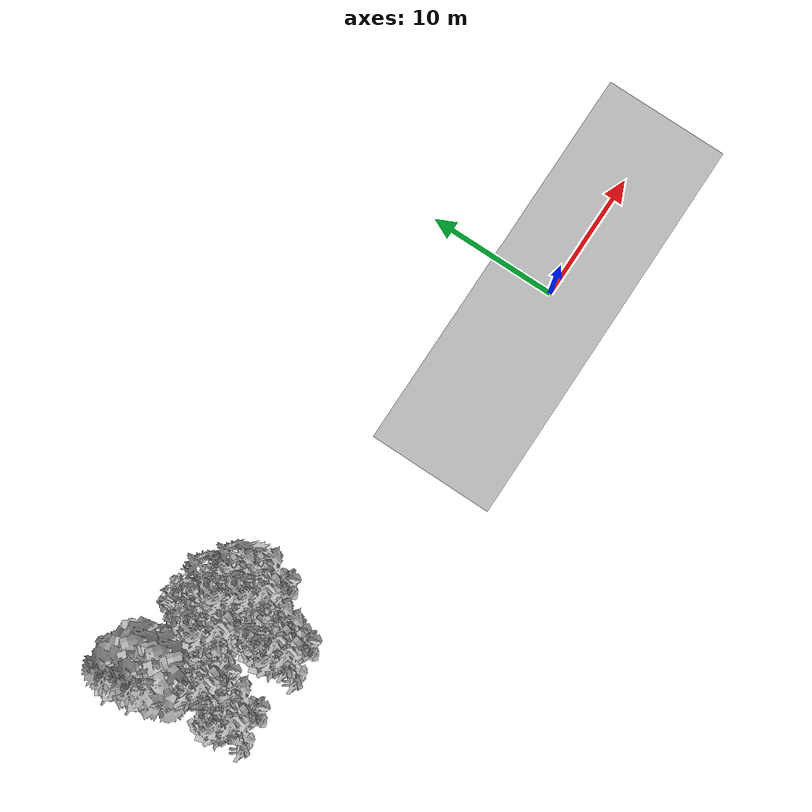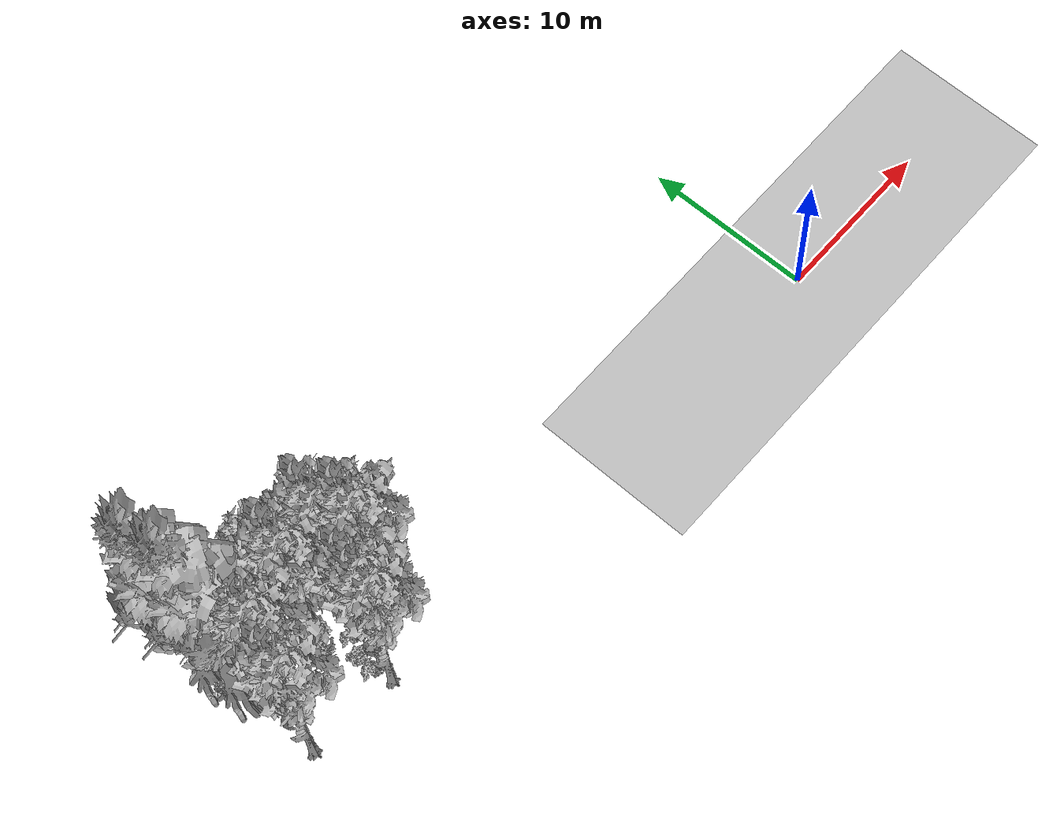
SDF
<sdf version="1.7">
 <world name="default">
  <model name="ground_plane">
   <static>1</static>
   <link name="link">
    <collision name="collision">
     <geometry><plane><normal>0 0 1</normal><size>100 100</size></plane></geometry>
     <surface><contact><ode><min_depth>0.01</min_depth><max_vel>0</max_vel></ode></contact></surface>
    </collision>
    <visual name="grass">
     <cast_shadows>0</cast_shadows>
     <geometry>
      <mesh>
       <scale>0.5814285714285714 0.18142857142857144 0.1</scale>
       <uri>file://grass_plane/meshes/grass_plane.dae</uri>
      </mesh>
     </geometry>
    </visual>
   </link>
  </model>
  <model name="Tree 63">
   <static>1</static>
   <pose>-31.21561768988544 2.196881461861672 0 1.57079 -0 0</pose>
   <link name="link">
    <collision name="collision">
     <geometry><mesh><scale>3.5 5 3.5</scale><uri>model://tree_9/meshes/tree_9.obj</uri></mesh></geometry>
    </collision>
    <visual name="visual">
     <geometry><mesh><scale>3.5 5 3.5</scale><uri>model://tree_9/meshes/tree_9.obj</uri></mesh></geometry>
    </visual>
   </link>
  </model>
  <model name="Tree 78">
   <static>1</static>
   <pose>-28.92555686504793 4.577419622613448 0 1.57079 -0 0</pose>
   <link name="link">
    <collision name="collision">
     <geometry><mesh><scale>3.5 5 3.5</scale><uri>model://tree_9/meshes/tree_9.obj</uri></mesh></geometry>
    </collision>
    <visual name="visual">
     <geometry><mesh><scale>3.5 5 3.5</scale><uri>model://tree_9/meshes/tree_9.obj</uri></mesh></geometry>
    </visual>
   </link>
  </model>
  <model name="Tree 94">
   <static>1</static>
   <pose>-31.697492277629234 7.117994586866555 0 1.57079 -0 0</pose>
   <link name="link">
    <collision name="collision">
     <geometry><mesh><scale>3.5 5 3.5</scale><uri>model://tree_2/meshes/tree_2.obj</uri></mesh></geometry>
    </collision>
    <visual name="visual">
     <geometry><mesh><scale>3.5 5 3.5</scale><uri>model://tree_2/meshes/tree_2.obj</uri></mesh></geometry>
    </visual>
   </link>
  </model>
  <model name="Tree 200">
   <static>1</static>
   <pose>-37.3168817742573 8.342713063327917 0 1.57079 -0 0</pose>
   <link name="link">
    <collision name="collision">
     <geometry><mesh><scale>3.5 5 3.5</scale><uri>model://tree_4/meshes/tree_4.obj</uri></mesh></geometry>
    </collision>
    <visual name="visual">
     <geometry><mesh><scale>3.5 5 3.5</scale><uri>model://tree_4/meshes/tree_4.obj</uri></mesh></geometry>
    </visual>
   </link>
  </model>
  <model name="Tree 217">
   <static>1</static>
   <pose>-36.78636152033653 1.6754606023250744 0 1.57079 -0 0</pose>
   <link name="link">
    <collision name="collision">
     <geometry><mesh><scale>3.5 5 3.5</scale><uri>model://tree_9/meshes/tree_9.obj</uri></mesh></geometry>
    </collision>
    <visual name="visual">
     <geometry><mesh><scale>3.5 5 3.5</scale><uri>model://tree_9/meshes/tree_9.obj</uri></mesh></geometry>
    </visual>
   </link>
  </model>
  <model name="Tree 220">
   <static>1</static>
   <pose>-36.97636480502211 6.691203330933504 0 1.57079 -0 0</pose>
   <link name="link">
    <collision name="collision">
     <geometry><mesh><scale>3.5 5 3.5</scale><uri>model://tree_4/meshes/tree_4.obj</uri></mesh></geometry>
    </collision>
    <visual name="visual">
     <geometry><mesh><scale>3.5 5 3.5</scale><uri>model://tree_4/meshes/tree_4.obj</uri></mesh></geometry>
    </visual>
   </link>
  </model>
  <model name="Tree 242">
   <static>1</static>
   <pose>-29.951175129478877 5.967995653652164 0 1.57079 -0 0</pose>
   <link name="link">
    <collision name="collision">
     <geometry><mesh><scale>3.5 5 3.5</scale><uri>model://tree_9/meshes/tree_9.obj</uri></mesh></geometry>
    </collision>
    <visual name="visual">
     <geometry><mesh><scale>3.5 5 3.5</scale><uri>model://tree_9/meshes/tree_9.obj</uri></mesh></geometry>
    </visual>
   </link>
  </model>
  <model name="Tree 244">
   <static>1</static>
   <pose>-30.010970010973917 5.877095161594713 0 1.57079 -0 0</pose>
   <link name="link">
    <collision name="collision">
     <geometry><mesh><scale>3.5 5 3.5</scale><uri>model://tree_2/meshes/tree_2.obj</uri></mesh></geometry>
    </collision>
    <visual name="visual">
     <geometry><mesh><scale>3.5 5 3.5</scale><uri>model://tree_2/meshes/tree_2.obj</uri></mesh></geometry>
    </visual>
   </link>
  </model>
  <model name="Tree 303">
   <static>1</static>
   <pose>-35.87293589277638 4.53346519526924 0 1.57079 -0 0</pose>
   <link name="link">
    <collision name="collision">
     <geometry><mesh><scale>3.5 5 3.5</scale><uri>model://tree_9/meshes/tree_9.obj</uri></mesh></geometry>
    </collision>
    <visual name="visual">
     <geometry><mesh><scale>3.5 5 3.5</scale><uri>model://tree_9/meshes/tree_9.obj</uri></mesh></geometry>
    </visual>
   </link>
  </model>
  <model name="Tree 315">
   <static>1</static>
   <pose>-32.563385631751046 5.72200652924996 0 1.57079 -0 0</pose>
   <link name="link">
    <collision name="collision">
     <geometry><mesh><scale>3.5 5 3.5</scale><uri>model://tree_9/meshes/tree_9.obj</uri></mesh></geometry>
    </collision>
    <visual name="visual">
     <geometry><mesh><scale>3.5 5 3.5</scale><uri>model://tree_9/meshes/tree_9.obj</uri></mesh></geometry>
    </visual>
   </link>
  </model>
  <model name="Tree 320">
   <static>1</static>
   <pose>-31.44350111024857 1.2534773357259326 0 1.57079 -0 0</pose>
   <link name="link">
    <collision name="collision">
     <geometry><mesh><scale>3.5 5 3.5</scale><uri>model://tree_9/meshes/tree_9.obj</uri></mesh></geometry>
    </collision>
    <visual name="visual">
     <geometry><mesh><scale>3.5 5 3.5</scale><uri>model://tree_9/meshes/tree_9.obj</uri></mesh></geometry>
    </visual>
   </link>
  </model>
  <model name="Bush 35">
   <static>1</static>
   <pose>-32.37316757940988 5.565259713602575 0 1.57079 -0 0</pose>
   <link name="link">
    <collision name="collision">
     <geometry><mesh><scale>2 2 2</scale><uri>model://bush_1/meshes/bush_1.obj</uri></mesh></geometry>
     <surface><contact><collide_without_contact>false</collide_without_contact></contact></surface>
    </collision>
    <visual name="visual">
     <geometry><mesh><scale>2 2 2</scale><uri>model://bush_1/meshes/bush_1.obj</uri></mesh></geometry>
    </visual>
   </link>
  </model>
  <model name="Bush 130">
   <static>1</static>
   <pose>-31.63179395514508 3.2732201450500433 0 1.57079 -0 0</pose>
   <link name="link">
    <collision name="collision">
     <geometry><mesh><scale>2 2 2</scale><uri>model://bush_3/meshes/bush_3.obj</uri></mesh></geometry>
     <surface><contact><collide_without_contact>false</collide_without_contact></contact></surface>
    </collision>
    <visual name="visual">
     <geometry><mesh><scale>2 2 2</scale><uri>model://bush_3/meshes/bush_3.obj</uri></mesh></geometry>
    </visual>
   </link>
  </model>
  <model name="Bush 206">
   <static>1</static>
   <pose>-35.0071109521883 4.3697994524018995 0 1.57079 -0 0</pose>
   <link name="link">
    <collision name="collision">
     <geometry><mesh><scale>2 2 2</scale><uri>model://bush_0/meshes/bush_0.obj</uri></mesh></geometry>
     <surface><contact><collide_without_contact>false</collide_without_contact></contact></surface>
    </collision>
    <visual name="visual">
     <geometry><mesh><scale>2 2 2</scale><uri>model://bush_0/meshes/bush_0.obj</uri></mesh></geometry>
    </visual>
   </link>
  </model>
  <model name="Bush 207">
   <static>1</static>
   <pose>-32.64963420022117 4.603587213596008 0 1.57079 -0 0</pose>
   <link name="link">
    <collision name="collision">
     <geometry><mesh><scale>2 2 2</scale><uri>model://bush_4/meshes/bush_4.obj</uri></mesh></geometry>
     <surface><contact><collide_without_contact>false</collide_without_contact></contact></surface>
    </collision>
    <visual name="visual">
     <geometry><mesh><scale>2 2 2</scale><uri>model://bush_4/meshes/bush_4.obj</uri></mesh></geometry>
    </visual>
   </link>
  </model>
  <model name="Bush 222">
   <static>1</static>
   <pose>-37.312894489707695 7.2241543597930225 0 1.57079 -0 0</pose>
   <link name="link">
    <collision name="collision">
     <geometry><mesh><scale>2 2 2</scale><uri>model://bush_5/meshes/bush_5.obj</uri></mesh></geometry>
     <surface><contact><collide_without_contact>false</collide_without_contact></contact></surface>
    </collision>
    <visual name="visual">
     <geometry><mesh><scale>2 2 2</scale><uri>model://bush_5/meshes/bush_5.obj</uri></mesh></geometry>
    </visual>
   </link>
  </model>
  <model name="Bush 234">
   <static>1</static>
   <pose>-29.791986182399487 5.2658072166791285 0 1.57079 -0 0</pose>
   <link name="link">
    <collision name="collision">
     <geometry><mesh><scale>2 2 2</scale><uri>model://bush_4/meshes/bush_4.obj</uri></mesh></geometry>
     <surface><contact><collide_without_contact>false</collide_without_contact></contact></surface>
    </collision>
    <visual name="visual">
     <geometry><mesh><scale>2 2 2</scale><uri>model://bush_4/meshes/bush_4.obj</uri></mesh></geometry>
    </visual>
   </link>
  </model>
  <model name="Bush 245">
   <static>1</static>
   <pose>-31.231741331025646 4.412689349904586 0 1.57079 -0 0</pose>
   <link name="link">
    <collision name="collision">
     <geometry><mesh><scale>2 2 2</scale><uri>model://bush_2/meshes/bush_2.obj</uri></mesh></geometry>
     <surface><contact><collide_without_contact>false</collide_without_contact></contact></surface>
    </collision>
    <visual name="visual">
     <geometry><mesh><scale>2 2 2</scale><uri>model://bush_2/meshes/bush_2.obj</uri></mesh></geometry>
    </visual>
   </link>
  </model>
  <model name="Bush 282">
   <static>1</static>
   <pose>-29.44556093262815 6.908944464965664 0 1.57079 -0 0</pose>
   <link name="link">
    <collision name="collision">
     <geometry><mesh><scale>2 2 2</scale><uri>model://bush_1/meshes/bush_1.obj</uri></mesh></geometry>
     <surface><contact><collide_without_contact>false</collide_without_contact></contact></surface>
    </collision>
    <visual name="visual">
     <geometry><mesh><scale>2 2 2</scale><uri>model://bush_1/meshes/bush_1.obj</uri></mesh></geometry>
    </visual>
   </link>
  </model>
  <model name="Bush 290">
   <static>1</static>
   <pose>-31.832633406155832 2.340225608832558 0 1.57079 -0 0</pose>
   <link name="link">
    <collision name="collision">
     <geometry><mesh><scale>2 2 2</scale><uri>model://bush_2/meshes/bush_2.obj</uri></mesh></geometry>
     <surface><contact><collide_without_contact>false</collide_without_contact></contact></surface>
    </collision>
    <visual name="visual">
     <geometry><mesh><scale>2 2 2</scale><uri>model://bush_2/meshes/bush_2.obj</uri></mesh></geometry>
    </visual>
   </link>
  </model>
  <model name="Bush 292">
   <static>1</static>
   <pose>-35.76386585404576 8.378108346823357 0 1.57079 -0 0</pose>
   <link name="link">
    <collision name="collision">
     <geometry><mesh><scale>2 2 2</scale><uri>model://bush_3/meshes/bush_3.obj</uri></mesh></geometry>
     <surface><contact><collide_without_contact>false</collide_without_contact></contact></surface>
    </collision>
    <visual name="visual">
     <geometry><mesh><scale>2 2 2</scale><uri>model://bush_3/meshes/bush_3.obj</uri></mesh></geometry>
    </visual>
   </link>
  </model>
  <model name="Bush 317">
   <static>1</static>
   <pose>-37.632341711920276 7.196501759660482 0 1.57079 -0 0</pose>
   <link name="link">
    <collision name="collision">
     <geometry><mesh><scale>2 2 2</scale><uri>model://bush_4/meshes/bush_4.obj</uri></mesh></geometry>
     <surface><contact><collide_without_contact>false</collide_without_contact></contact></surface>
    </collision>
    <visual name="visual">
     <geometry><mesh><scale>2 2 2</scale><uri>model://bush_4/meshes/bush_4.obj</uri></mesh></geometry>
    </visual>
   </link>
  </model>
 </world>
</sdf>
